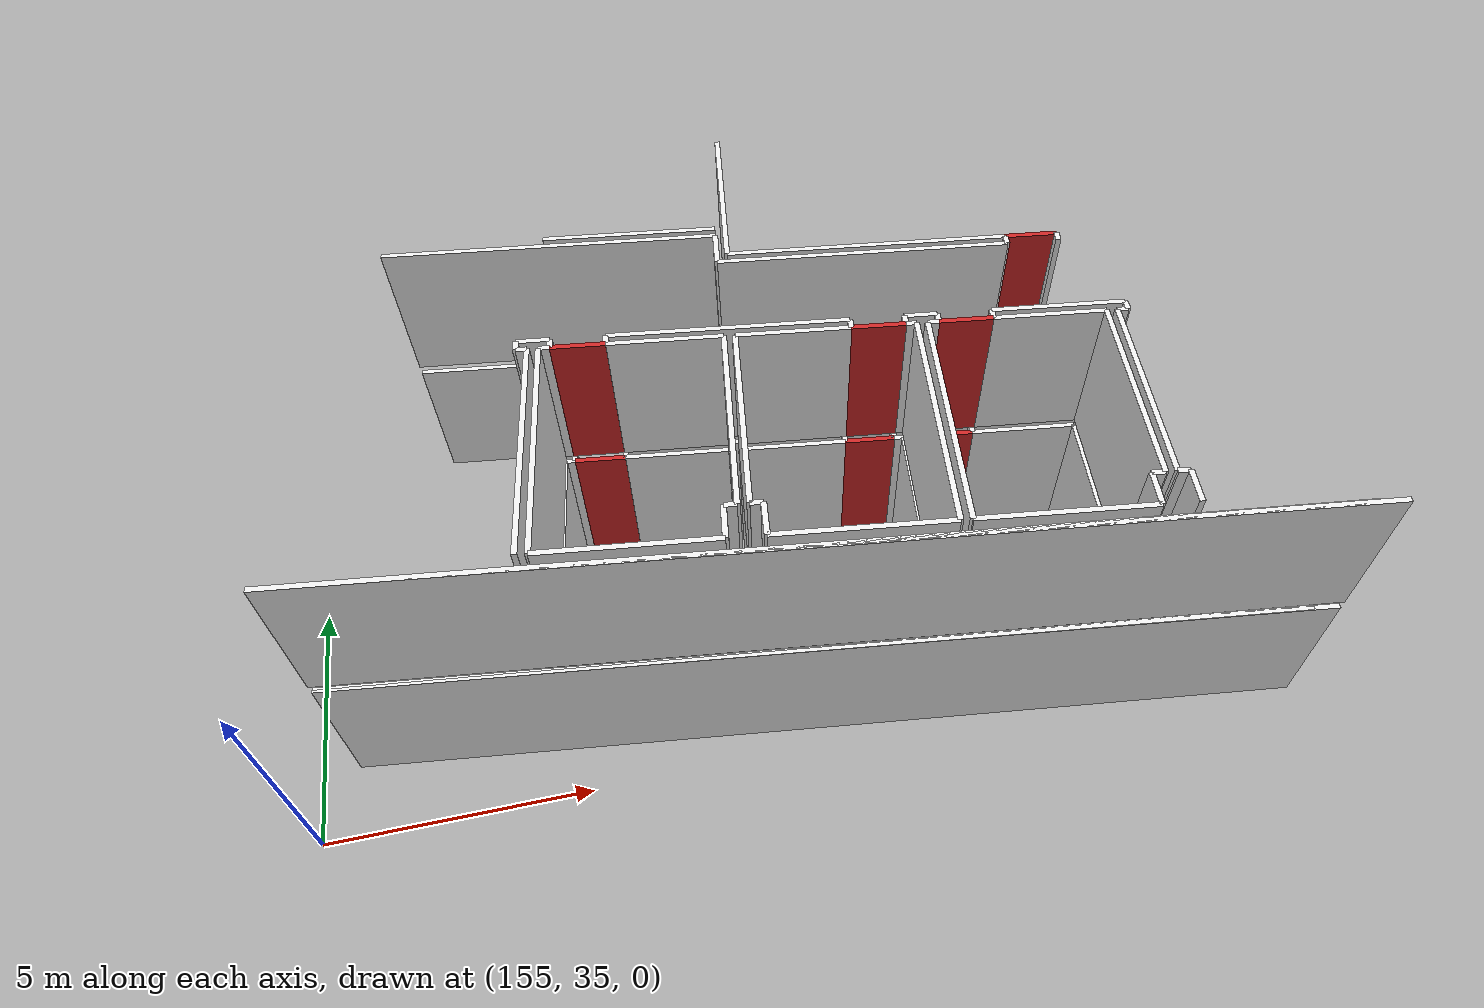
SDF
<sdf version="1.6">
 <world name="default">
  <model name="wall_166.5_39.9_0.0">
   <static>true</static>
   <pose>166.50500000000466 39.91000000014901 1.5 0 0 -0.1206236686924795</pose>
   <link name="link">
    <visual name="visual">
     <geometry><box><size>0.9972462083198822 0.1 3</size></box></geometry>
     <material>
      <script><uri>file://media/materials/scripts/gazebo.material</uri><name>Gazebo/Red</name></script>
     </material>
    </visual>
   </link>
  </model>
  <model name="wall_161.1_40.6_0.0">
   <static>true</static>
   <pose>161.1350000000093 40.56000000005588 1.5 0 0 -0.1206236686924795</pose>
   <link name="link">
    <visual name="visual">
     <geometry><box><size>0.9972462083198822 0.1 3</size></box></geometry>
     <material>
      <script><uri>file://media/materials/scripts/gazebo.material</uri><name>Gazebo/Red</name></script>
     </material>
    </visual>
   </link>
  </model>
  <model name="wall_168.1_39.7_0.0">
   <static>true</static>
   <pose>168.09500000000116 39.71999999997206 1.5 0 0 -0.12062366822190172</pose>
   <link name="link">
    <visual name="visual">
     <geometry><box><size>0.9972462083216332 0.1 3</size></box></geometry>
     <material>
      <script><uri>file://media/materials/scripts/gazebo.material</uri><name>Gazebo/Red</name></script>
     </material>
    </visual>
   </link>
  </model>
  <model name="wall_170.0_41.7_0.0">
   <static>true</static>
   <pose>170.0100000000093 41.68999999994412 1.5 0 0 -0.11942892612851068</pose>
   <link name="link">
    <visual name="visual">
     <geometry><box><size>1.0071742649744493 0.1 3</size></box></geometry>
     <material>
      <script><uri>file://media/materials/scripts/gazebo.material</uri><name>Gazebo/Red</name></script>
     </material>
    </visual>
   </link>
  </model>
  <model name="wall_166.9_37.6_0.0">
   <static>true</static>
   <pose>166.92499999998836 37.63000000012107 1.5 0 0 -1.690673321615393</pose>
   <link name="link">
    <visual name="visual">
     <geometry><box><size>4.4318055010582365 0.1 3</size></box></geometry>
     <material>
      <script><uri>file://media/materials/scripts/gazebo.material</uri><name>Gazebo/White</name></script>
     </material>
    </visual>
   </link>
  </model>
  <model name="wall_165.1_35.6_0.0">
   <static>true</static>
   <pose>165.1349999999802 35.61499999999069 1.5 0 0 3.0208710707011033</pose>
   <link name="link">
    <visual name="visual">
     <geometry><box><size>3.0723606558584717 0.1 3</size></box></geometry>
     <material>
      <script><uri>file://media/materials/scripts/gazebo.material</uri><name>Gazebo/White</name></script>
     </material>
    </visual>
   </link>
  </model>
  <model name="wall_163.6_36.1_0.0">
   <static>true</static>
   <pose>163.64499999998952 36.11999999987893 1.5 0 0 1.4618543698162652</pose>
   <link name="link">
    <visual name="visual">
     <geometry><box><size>0.6438167442431666 0.1 3</size></box></geometry>
     <material>
      <script><uri>file://media/materials/scripts/gazebo.material</uri><name>Gazebo/White</name></script>
     </material>
    </visual>
   </link>
  </model>
  <model name="wall_163.6_36.5_0.0">
   <static>true</static>
   <pose>163.57000000000698 36.455000000074506 1.5 0 0 3.00606493842361</pose>
   <link name="link">
    <visual name="visual">
     <geometry><box><size>0.2220360331192952 0.1 3</size></box></geometry>
     <material>
      <script><uri>file://media/materials/scripts/gazebo.material</uri><name>Gazebo/White</name></script>
     </material>
    </visual>
   </link>
  </model>
  <model name="wall_163.7_38.3_0.0">
   <static>true</static>
   <pose>163.69000000000233 38.34500000020489 1.5 0 0 1.44873942407576</pose>
   <link name="link">
    <visual name="visual">
     <geometry><box><size>3.7781079920994487 0.1 3</size></box></geometry>
     <material>
      <script><uri>file://media/materials/scripts/gazebo.material</uri><name>Gazebo/White</name></script>
     </material>
    </visual>
   </link>
  </model>
  <model name="wall_165.0_40.1_0.0">
   <static>true</static>
   <pose>164.9649999999965 40.09500000020489 1.5 0 0 -0.11905156754423915</pose>
   <link name="link">
    <visual name="visual">
     <geometry><box><size>2.1048990474859015 0.1 3</size></box></geometry>
     <material>
      <script><uri>file://media/materials/scripts/gazebo.material</uri><name>Gazebo/White</name></script>
     </material>
    </visual>
   </link>
  </model>
  <model name="wall_167.1_39.8_0.0">
   <static>true</static>
   <pose>167.09500000000116 39.84000000008382 1.5 0 0 -0.10487693882591773</pose>
   <link name="link">
    <visual name="visual">
     <geometry><box><size>0.19104973174969345 0.1 3</size></box></geometry>
     <material>
      <script><uri>file://media/materials/scripts/gazebo.material</uri><name>Gazebo/White</name></script>
     </material>
    </visual>
   </link>
  </model>
  <model name="wall_162.7_40.4_0.0">
   <static>true</static>
   <pose>162.67499999998836 40.375 1.5 0 0 3.0225410860422697</pose>
   <link name="link">
    <visual name="visual">
     <geometry><box><size>2.104899047428106 0.1 3</size></box></geometry>
     <material>
      <script><uri>file://media/materials/scripts/gazebo.material</uri><name>Gazebo/White</name></script>
     </material>
    </visual>
   </link>
  </model>
  <model name="wall_160.5_40.6_0.0">
   <static>true</static>
   <pose>160.54000000000815 40.63000000012107 1.5 0 0 3.0419240010121844</pose>
   <link name="link">
    <visual name="visual">
     <geometry><box><size>0.20099751243585498 0.1 3</size></box></geometry>
     <material>
      <script><uri>file://media/materials/scripts/gazebo.material</uri><name>Gazebo/White</name></script>
     </material>
    </visual>
   </link>
  </model>
  <model name="wall_160.2_38.4_0.0">
   <static>true</static>
   <pose>160.17499999998836 38.44000000017695 1.5 0 0 -1.690673321615393</pose>
   <link name="link">
    <visual name="visual">
     <geometry><box><size>4.4318055010582365 0.1 3</size></box></geometry>
     <material>
      <script><uri>file://media/materials/scripts/gazebo.material</uri><name>Gazebo/White</name></script>
     </material>
    </visual>
   </link>
  </model>
  <model name="wall_161.4_36.1_0.0">
   <static>true</static>
   <pose>161.43499999999767 36.06000000005588 1.5 0 0 -0.11748918977593945</pose>
   <link name="link">
    <visual name="visual">
     <geometry><box><size>3.071172414652986 0.1 3</size></box></geometry>
     <material>
      <script><uri>file://media/materials/scripts/gazebo.material</uri><name>Gazebo/White</name></script>
     </material>
    </visual>
   </link>
  </model>
  <model name="wall_163.0_36.2_0.0">
   <static>true</static>
   <pose>163.0 36.199999999953434 1.5 0 0 1.4464413323376855</pose>
   <link name="link">
    <visual name="visual">
     <geometry><box><size>0.6449806199880641 0.1 3</size></box></geometry>
     <material>
      <script><uri>file://media/materials/scripts/gazebo.material</uri><name>Gazebo/White</name></script>
     </material>
    </visual>
   </link>
  </model>
  <model name="wall_163.1_36.5_0.0">
   <static>true</static>
   <pose>163.14999999999418 36.50500000012107 1.5 0 0 -0.13552771305276134</pose>
   <link name="link">
    <visual name="visual">
     <geometry><box><size>0.22203603311405212 0.1 3</size></box></geometry>
     <material>
      <script><uri>file://media/materials/scripts/gazebo.material</uri><name>Gazebo/White</name></script>
     </material>
    </visual>
   </link>
  </model>
  <model name="wall_163.5_38.4_0.0">
   <static>true</static>
   <pose>163.4899999999907 38.37000000011176 1.5 0 0 1.4490608416488255</pose>
   <link name="link">
    <visual name="visual">
     <geometry><box><size>3.7880337905415886 0.1 3</size></box></geometry>
     <material>
      <script><uri>file://media/materials/scripts/gazebo.material</uri><name>Gazebo/White</name></script>
     </material>
    </visual>
   </link>
  </model>
  <model name="wall_170.4_37.5_0.0">
   <static>true</static>
   <pose>170.44499999997788 37.53000000002794 1.5 0 0 -1.6899106225096845</pose>
   <link name="link">
    <visual name="visual">
     <geometry><box><size>3.7868324496644155 0.1 3</size></box></geometry>
     <material>
      <script><uri>file://media/materials/scripts/gazebo.material</uri><name>Gazebo/White</name></script>
     </material>
    </visual>
   </link>
  </model>
  <model name="wall_170.1_35.7_0.0">
   <static>true</static>
   <pose>170.10499999998137 35.66500000003725 1.5 0 0 3.0118901153086775</pose>
   <link name="link">
    <visual name="visual">
     <geometry><box><size>0.23194827011012187 0.1 3</size></box></geometry>
     <material>
      <script><uri>file://media/materials/scripts/gazebo.material</uri><name>Gazebo/White</name></script>
     </material>
    </visual>
   </link>
  </model>
  <model name="wall_169.9_35.4_0.0">
   <static>true</static>
   <pose>169.94999999998254 35.360000000102445 1.5 0 0 -1.695151321341658</pose>
   <link name="link">
    <visual name="visual">
     <geometry><box><size>0.6449806199952839 0.1 3</size></box></geometry>
     <material>
      <script><uri>file://media/materials/scripts/gazebo.material</uri><name>Gazebo/White</name></script>
     </material>
    </visual>
   </link>
  </model>
  <model name="wall_168.4_35.2_0.0">
   <static>true</static>
   <pose>168.3849999999802 35.22500000009313 1.5 0 0 3.020871070550642</pose>
   <link name="link">
    <visual name="visual">
     <geometry><box><size>3.0723606559145504 0.1 3</size></box></geometry>
     <material>
      <script><uri>file://media/materials/scripts/gazebo.material</uri><name>Gazebo/White</name></script>
     </material>
    </visual>
   </link>
  </model>
  <model name="wall_167.1_37.6_0.0">
   <static>true</static>
   <pose>167.125 37.60499999998137 1.5 0 0 1.4506488810357367</pose>
   <link name="link">
    <visual name="visual">
     <geometry><box><size>4.421877428998444 0.1 3</size></box></geometry>
     <material>
      <script><uri>file://media/materials/scripts/gazebo.material</uri><name>Gazebo/White</name></script>
     </material>
    </visual>
   </link>
  </model>
  <model name="wall_167.5_39.8_0.0">
   <static>true</static>
   <pose>167.49499999999534 39.78999999980442 1.5 0 0 -0.09495170644739931</pose>
   <link name="link">
    <visual name="visual">
     <geometry><box><size>0.21095023106197072 0.1 3</size></box></geometry>
     <material>
      <script><uri>file://media/materials/scripts/gazebo.material</uri><name>Gazebo/White</name></script>
     </material>
    </visual>
   </link>
  </model>
  <model name="wall_169.6_39.5_0.0">
   <static>true</static>
   <pose>169.63000000000466 39.53500000014901 1.5 0 0 -0.11961849947817037</pose>
   <link name="link">
    <visual name="visual">
     <geometry><box><size>2.094970166810415 0.1 3</size></box></geometry>
     <material>
      <script><uri>file://media/materials/scripts/gazebo.material</uri><name>Gazebo/White</name></script>
     </material>
    </visual>
   </link>
  </model>
  <model name="wall_171.3_41.5_0.0">
   <static>true</static>
   <pose>171.31500000000233 41.53499999991618 1.5 0 0 3.024123548711388</pose>
   <link name="link">
    <visual name="visual">
     <geometry><box><size>1.6211724152395952 0.1 3</size></box></geometry>
     <material>
      <script><uri>file://media/materials/scripts/gazebo.material</uri><name>Gazebo/White</name></script>
     </material>
    </visual>
   </link>
  </model>
  <model name="wall_166.8_42.1_0.0">
   <static>true</static>
   <pose>166.8399999999965 42.07000000006519 1.5 0 0 3.0223114162191558</pose>
   <link name="link">
    <visual name="visual">
     <geometry><box><size>5.378215317411569 0.1 3</size></box></geometry>
     <material>
      <script><uri>file://media/materials/scripts/gazebo.material</uri><name>Gazebo/White</name></script>
     </material>
    </visual>
   </link>
  </model>
  <model name="wall_164.4_44.1_0.0">
   <static>true</static>
   <pose>164.38000000000466 44.12000000011176 1.5 0 0 1.4500000360731269</pose>
   <link name="link">
    <visual name="visual">
     <geometry><box><size>3.4853981120924216 0.1 3</size></box></geometry>
     <material>
      <script><uri>file://media/materials/scripts/gazebo.material</uri><name>Gazebo/White</name></script>
     </material>
    </visual>
   </link>
  </model>
  <model name="wall_162.4_43.4_0.0">
   <static>true</static>
   <pose>162.42500000001746 43.360000000102445 1.5 0 0 3.0206059098054316</pose>
   <link name="link">
    <visual name="visual">
     <geometry><box><size>3.3142269083132514 0.1 3</size></box></geometry>
     <material>
      <script><uri>file://media/materials/scripts/gazebo.material</uri><name>Gazebo/White</name></script>
     </material>
    </visual>
   </link>
  </model>
  <model name="wall_160.1_40.7_0.0">
   <static>true</static>
   <pose>160.13999999998487 40.67999999993481 1.5 0 0 -0.09966865257760905</pose>
   <link name="link">
    <visual name="visual">
     <geometry><box><size>0.20099751243585498 0.1 3</size></box></geometry>
     <material>
      <script><uri>file://media/materials/scripts/gazebo.material</uri><name>Gazebo/White</name></script>
     </material>
    </visual>
   </link>
  </model>
  <model name="wall_160.0_38.5_0.0">
   <static>true</static>
   <pose>159.97000000000116 38.46999999997206 1.5 0 0 -1.6929129367175275</pose>
   <link name="link">
    <visual name="visual">
     <geometry><box><size>4.433012519625655 0.1 3</size></box></geometry>
     <material>
      <script><uri>file://media/materials/scripts/gazebo.material</uri><name>Gazebo/White</name></script>
     </material>
    </visual>
   </link>
  </model>
  <model name="wall_171.0_39.4_0.0">
   <static>true</static>
   <pose>170.97000000000116 39.36999999987893 1.5 0 0 -0.09966865257760905</pose>
   <link name="link">
    <visual name="visual">
     <geometry><box><size>0.20099751243585498 0.1 3</size></box></geometry>
     <material>
      <script><uri>file://media/materials/scripts/gazebo.material</uri><name>Gazebo/White</name></script>
     </material>
    </visual>
   </link>
  </model>
  <model name="wall_170.6_35.3_0.0">
   <static>true</static>
   <pose>170.60000000000582 35.28000000002794 1.5 0 0 1.446441332248135</pose>
   <link name="link">
    <visual name="visual">
     <geometry><box><size>0.6449806199952839 0.1 3</size></box></geometry>
     <material>
      <script><uri>file://media/materials/scripts/gazebo.material</uri><name>Gazebo/White</name></script>
     </material>
    </visual>
   </link>
  </model>
  <model name="wall_170.5_35.6_0.0">
   <static>true</static>
   <pose>170.52999999999884 35.61499999999069 1.5 0 0 3.006064940537032</pose>
   <link name="link">
    <visual name="visual">
     <geometry><box><size>0.22203603311405212 0.1 3</size></box></geometry>
     <material>
      <script><uri>file://media/materials/scripts/gazebo.material</uri><name>Gazebo/White</name></script>
     </material>
    </visual>
   </link>
  </model>
  <model name="wall_170.6_37.5_0.0">
   <static>true</static>
   <pose>170.64499999998952 37.50499999988824 1.5 0 0 1.4513674007734978</pose>
   <link name="link">
    <visual name="visual">
     <geometry><box><size>3.7769034936056385 0.1 3</size></box></geometry>
     <material>
      <script><uri>file://media/materials/scripts/gazebo.material</uri><name>Gazebo/White</name></script>
     </material>
    </visual>
   </link>
  </model>
  <model name="wall_166.7_41.9_0.0">
   <static>true</static>
   <pose>166.72000000000116 41.87999999988824 1.5 0 0 -0.11857471213006499</pose>
   <link name="link">
    <visual name="visual">
     <geometry><box><size>5.579175566332764 0.1 3</size></box></geometry>
     <material>
      <script><uri>file://media/materials/scripts/gazebo.material</uri><name>Gazebo/White</name></script>
     </material>
    </visual>
   </link>
  </model>
  <model name="wall_169.5_41.6_0.0">
   <static>true</static>
   <pose>169.5 41.64999999990687 1.5 0 0 1.4711276743037347</pose>
   <link name="link">
    <visual name="visual">
     <geometry><box><size>0.20099751260961132 0.1 3</size></box></geometry>
     <material>
      <script><uri>file://media/materials/scripts/gazebo.material</uri><name>Gazebo/White</name></script>
     </material>
    </visual>
   </link>
  </model>
  <model name="wall_170.5_41.5_0.0">
   <static>true</static>
   <pose>170.49499999999534 41.53000000002794 1.5 0 0 -1.7196862747459547</pose>
   <link name="link">
    <visual name="visual">
     <geometry><box><size>0.2022374838894058 0.1 3</size></box></geometry>
     <material>
      <script><uri>file://media/materials/scripts/gazebo.material</uri><name>Gazebo/White</name></script>
     </material>
    </visual>
   </link>
  </model>
  <model name="wall_171.1_39.5_0.0">
   <static>true</static>
   <pose>171.0800000000163 39.45999999996275 1.5 0 0 1.4711276743037347</pose>
   <link name="link">
    <visual name="visual">
     <geometry><box><size>0.20099751260961132 0.1 3</size></box></geometry>
     <material>
      <script><uri>file://media/materials/scripts/gazebo.material</uri><name>Gazebo/White</name></script>
     </material>
    </visual>
   </link>
  </model>
  <model name="wall_169.9_39.7_0.0">
   <static>true</static>
   <pose>169.85500000001048 39.70999999996275 1.5 0 0 3.0207271763608894</pose>
   <link name="link">
    <visual name="visual">
     <geometry><box><size>2.4881519246295563 0.1 3</size></box></geometry>
     <material>
      <script><uri>file://media/materials/scripts/gazebo.material</uri><name>Gazebo/White</name></script>
     </material>
    </visual>
   </link>
  </model>
  <model name="wall_168.6_39.8_0.0">
   <static>true</static>
   <pose>168.60500000001048 39.76000000000931 1.5 0 0 -1.7196862744613206</pose>
   <link name="link">
    <visual name="visual">
     <geometry><box><size>0.20223748388077126 0.1 3</size></box></geometry>
     <material>
      <script><uri>file://media/materials/scripts/gazebo.material</uri><name>Gazebo/White</name></script>
     </material>
    </visual>
   </link>
  </model>
  <model name="wall_167.6_39.9_0.0">
   <static>true</static>
   <pose>167.60999999998603 39.87999999988824 1.5 0 0 1.4711276743037347</pose>
   <link name="link">
    <visual name="visual">
     <geometry><box><size>0.20099751260961132 0.1 3</size></box></geometry>
     <material>
      <script><uri>file://media/materials/scripts/gazebo.material</uri><name>Gazebo/White</name></script>
     </material>
    </visual>
   </link>
  </model>
  <model name="wall_167.3_40.0_0.0">
   <static>true</static>
   <pose>167.32000000000698 40.014999999897555 1.5 0 0 3.0254510269809813</pose>
   <link name="link">
    <visual name="visual">
     <geometry><box><size>0.6040695323790061 0.1 3</size></box></geometry>
     <material>
      <script><uri>file://media/materials/scripts/gazebo.material</uri><name>Gazebo/White</name></script>
     </material>
    </visual>
   </link>
  </model>
  <model name="wall_167.0_39.9_0.0">
   <static>true</static>
   <pose>167.0100000000093 39.949999999953434 1.5 0 0 -1.670464979516584</pose>
   <link name="link">
    <visual name="visual">
     <geometry><box><size>0.20099751214626105 0.1 3</size></box></geometry>
     <material>
      <script><uri>file://media/materials/scripts/gazebo.material</uri><name>Gazebo/White</name></script>
     </material>
    </visual>
   </link>
  </model>
  <model name="wall_166.0_40.1_0.0">
   <static>true</static>
   <pose>166.02000000001863 40.07000000006519 1.5 0 0 1.471127674073209</pose>
   <link name="link">
    <visual name="visual">
     <geometry><box><size>0.20099751214626105 0.1 3</size></box></geometry>
     <material>
      <script><uri>file://media/materials/scripts/gazebo.material</uri><name>Gazebo/White</name></script>
     </material>
    </visual>
   </link>
  </model>
  <model name="wall_163.8_40.4_0.0">
   <static>true</static>
   <pose>163.8400000000256 40.43500000005588 1.5 0 0 3.0211735397007757</pose>
   <link name="link">
    <visual name="visual">
     <geometry><box><size>4.41194968243261 0.1 3</size></box></geometry>
     <material>
      <script><uri>file://media/materials/scripts/gazebo.material</uri><name>Gazebo/White</name></script>
     </material>
    </visual>
   </link>
  </model>
  <model name="wall_161.6_40.6_0.0">
   <static>true</static>
   <pose>161.64000000001397 40.60000000009313 1.5 0 0 -1.6704649792860586</pose>
   <link name="link">
    <visual name="visual">
     <geometry><box><size>0.20099751260961132 0.1 3</size></box></geometry>
     <material>
      <script><uri>file://media/materials/scripts/gazebo.material</uri><name>Gazebo/White</name></script>
     </material>
    </visual>
   </link>
  </model>
  <model name="wall_160.6_40.7_0.0">
   <static>true</static>
   <pose>160.64999999999418 40.71999999997206 1.5 0 0 1.471127674361366</pose>
   <link name="link">
    <visual name="visual">
     <geometry><box><size>0.20099751214046915 0.1 3</size></box></geometry>
     <material>
      <script><uri>file://media/materials/scripts/gazebo.material</uri><name>Gazebo/White</name></script>
     </material>
    </visual>
   </link>
  </model>
  <model name="wall_160.4_40.9_0.0">
   <static>true</static>
   <pose>160.35999999998603 40.85499999998137 1.5 0 0 3.025451026215301</pose>
   <link name="link">
    <visual name="visual">
     <geometry><box><size>0.6040695324329671 0.1 3</size></box></geometry>
     <material>
      <script><uri>file://media/materials/scripts/gazebo.material</uri><name>Gazebo/White</name></script>
     </material>
    </visual>
   </link>
  </model>
  <model name="wall_160.0_40.8_0.0">
   <static>true</static>
   <pose>160.04999999998836 40.79000000003725 1.5 0 0 -1.6704649792860586</pose>
   <link name="link">
    <visual name="visual">
     <geometry><box><size>0.20099751260961132 0.1 3</size></box></geometry>
     <material>
      <script><uri>file://media/materials/scripts/gazebo.material</uri><name>Gazebo/White</name></script>
     </material>
    </visual>
   </link>
  </model>
  <model name="wall_160.9_43.3_0.0">
   <static>true</static>
   <pose>160.8849999999802 43.34000000008382 1.5 0 0 -0.11986634401243841</pose>
   <link name="link">
    <visual name="visual">
     <geometry><box><size>6.3556038265721595 0.1 3</size></box></geometry>
     <material>
      <script><uri>file://media/materials/scripts/gazebo.material</uri><name>Gazebo/White</name></script>
     </material>
    </visual>
   </link>
  </model>
  <model name="wall_164.0_42.6_0.0">
   <static>true</static>
   <pose>163.99499999999534 42.58499999996275 1.5 0 0 -1.6902252527703903</pose>
   <link name="link">
    <visual name="visual">
     <geometry><box><size>0.7553806987169667 0.1 3</size></box></geometry>
     <material>
      <script><uri>file://media/materials/scripts/gazebo.material</uri><name>Gazebo/White</name></script>
     </material>
    </visual>
   </link>
  </model>
  <model name="wall_164.5_35.4_0.0">
   <static>true</static>
   <pose>164.52499999999418 35.41500000003725 1.5 0 0 -0.11969610327774036</pose>
   <link name="link">
    <visual name="visual">
     <geometry><box><size>17.837628766185997 0.1 3</size></box></geometry>
     <material>
      <script><uri>file://media/materials/scripts/gazebo.material</uri><name>Gazebo/White</name></script>
     </material>
    </visual>
   </link>
  </model>
  <model name="wall_164.8_35.4_0.0">
   <static>true</static>
   <pose>164.7599999999802 35.37999999988824 1.5 0 0 3.0211661134919177</pose>
   <link name="link">
    <visual name="visual">
     <geometry><box><size>18.312629521741698 0.1 3</size></box></geometry>
     <material>
      <script><uri>file://media/materials/scripts/gazebo.material</uri><name>Gazebo/White</name></script>
     </material>
    </visual>
   </link>
  </model>
  <model name="wall_166.5_39.9_3.2">
   <static>true</static>
   <pose>166.50500000000466 39.91000000014901 4.7 0 0 -0.1206236686924795</pose>
   <link name="link">
    <visual name="visual">
     <geometry><box><size>0.9972462083198822 0.1 3</size></box></geometry>
     <material>
      <script><uri>file://media/materials/scripts/gazebo.material</uri><name>Gazebo/Red</name></script>
     </material>
    </visual>
   </link>
  </model>
  <model name="wall_161.1_40.6_3.2">
   <static>true</static>
   <pose>161.1350000000093 40.56000000005588 4.7 0 0 -0.1206236686924795</pose>
   <link name="link">
    <visual name="visual">
     <geometry><box><size>0.9972462083198822 0.1 3</size></box></geometry>
     <material>
      <script><uri>file://media/materials/scripts/gazebo.material</uri><name>Gazebo/Red</name></script>
     </material>
    </visual>
   </link>
  </model>
  <model name="wall_168.1_39.7_3.2">
   <static>true</static>
   <pose>168.09500000000116 39.71999999997206 4.7 0 0 -0.12062366822190172</pose>
   <link name="link">
    <visual name="visual">
     <geometry><box><size>0.9972462083216332 0.1 3</size></box></geometry>
     <material>
      <script><uri>file://media/materials/scripts/gazebo.material</uri><name>Gazebo/Red</name></script>
     </material>
    </visual>
   </link>
  </model>
  <model name="wall_170.0_41.7_3.2">
   <static>true</static>
   <pose>170.0100000000093 41.68999999994412 4.7 0 0 -0.11942892612851068</pose>
   <link name="link">
    <visual name="visual">
     <geometry><box><size>1.0071742649744493 0.1 3</size></box></geometry>
     <material>
      <script><uri>file://media/materials/scripts/gazebo.material</uri><name>Gazebo/Red</name></script>
     </material>
    </visual>
   </link>
  </model>
  <model name="wall_166.9_37.6_3.2">
   <static>true</static>
   <pose>166.92499999998836 37.63000000012107 4.7 0 0 -1.690673321615393</pose>
   <link name="link">
    <visual name="visual">
     <geometry><box><size>4.4318055010582365 0.1 3</size></box></geometry>
     <material>
      <script><uri>file://media/materials/scripts/gazebo.material</uri><name>Gazebo/White</name></script>
     </material>
    </visual>
   </link>
  </model>
  <model name="wall_165.1_35.6_3.2">
   <static>true</static>
   <pose>165.1349999999802 35.61499999999069 4.7 0 0 3.0208710707011033</pose>
   <link name="link">
    <visual name="visual">
     <geometry><box><size>3.0723606558584717 0.1 3</size></box></geometry>
     <material>
      <script><uri>file://media/materials/scripts/gazebo.material</uri><name>Gazebo/White</name></script>
     </material>
    </visual>
   </link>
  </model>
  <model name="wall_163.6_36.1_3.2">
   <static>true</static>
   <pose>163.64499999998952 36.11999999987893 4.7 0 0 1.4618543698162652</pose>
   <link name="link">
    <visual name="visual">
     <geometry><box><size>0.6438167442431666 0.1 3</size></box></geometry>
     <material>
      <script><uri>file://media/materials/scripts/gazebo.material</uri><name>Gazebo/White</name></script>
     </material>
    </visual>
   </link>
  </model>
  <model name="wall_163.6_36.5_3.2">
   <static>true</static>
   <pose>163.57000000000698 36.455000000074506 4.7 0 0 3.00606493842361</pose>
   <link name="link">
    <visual name="visual">
     <geometry><box><size>0.2220360331192952 0.1 3</size></box></geometry>
     <material>
      <script><uri>file://media/materials/scripts/gazebo.material</uri><name>Gazebo/White</name></script>
     </material>
    </visual>
   </link>
  </model>
  <model name="wall_163.7_38.3_3.2">
   <static>true</static>
   <pose>163.69000000000233 38.34500000020489 4.7 0 0 1.44873942407576</pose>
   <link name="link">
    <visual name="visual">
     <geometry><box><size>3.7781079920994487 0.1 3</size></box></geometry>
     <material>
      <script><uri>file://media/materials/scripts/gazebo.material</uri><name>Gazebo/White</name></script>
     </material>
    </visual>
   </link>
  </model>
  <model name="wall_165.0_40.1_3.2">
   <static>true</static>
   <pose>164.9649999999965 40.09500000020489 4.7 0 0 -0.11905156754423915</pose>
   <link name="link">
    <visual name="visual">
     <geometry><box><size>2.1048990474859015 0.1 3</size></box></geometry>
     <material>
      <script><uri>file://media/materials/scripts/gazebo.material</uri><name>Gazebo/White</name></script>
     </material>
    </visual>
   </link>
  </model>
  <model name="wall_167.1_39.8_3.2">
   <static>true</static>
   <pose>167.09500000000116 39.84000000008382 4.7 0 0 -0.10487693882591773</pose>
   <link name="link">
    <visual name="visual">
     <geometry><box><size>0.19104973174969345 0.1 3</size></box></geometry>
     <material>
      <script><uri>file://media/materials/scripts/gazebo.material</uri><name>Gazebo/White</name></script>
     </material>
    </visual>
   </link>
  </model>
  <model name="wall_162.7_40.4_3.2">
   <static>true</static>
   <pose>162.67499999998836 40.375 4.7 0 0 3.0225410860422697</pose>
   <link name="link">
    <visual name="visual">
     <geometry><box><size>2.104899047428106 0.1 3</size></box></geometry>
     <material>
      <script><uri>file://media/materials/scripts/gazebo.material</uri><name>Gazebo/White</name></script>
     </material>
    </visual>
   </link>
  </model>
  <model name="wall_160.5_40.6_3.2">
   <static>true</static>
   <pose>160.54000000000815 40.63000000012107 4.7 0 0 3.0419240010121844</pose>
   <link name="link">
    <visual name="visual">
     <geometry><box><size>0.20099751243585498 0.1 3</size></box></geometry>
     <material>
      <script><uri>file://media/materials/scripts/gazebo.material</uri><name>Gazebo/White</name></script>
     </material>
    </visual>
   </link>
  </model>
  <model name="wall_160.2_38.4_3.2">
   <static>true</static>
   <pose>160.17499999998836 38.44000000017695 4.7 0 0 -1.690673321615393</pose>
   <link name="link">
    <visual name="visual">
     <geometry><box><size>4.4318055010582365 0.1 3</size></box></geometry>
     <material>
      <script><uri>file://media/materials/scripts/gazebo.material</uri><name>Gazebo/White</name></script>
     </material>
    </visual>
   </link>
  </model>
  <model name="wall_161.4_36.1_3.2">
   <static>true</static>
   <pose>161.43499999999767 36.06000000005588 4.7 0 0 -0.11748918977593945</pose>
   <link name="link">
    <visual name="visual">
     <geometry><box><size>3.071172414652986 0.1 3</size></box></geometry>
     <material>
      <script><uri>file://media/materials/scripts/gazebo.material</uri><name>Gazebo/White</name></script>
     </material>
    </visual>
   </link>
  </model>
  <model name="wall_163.0_36.2_3.2">
   <static>true</static>
   <pose>163.0 36.199999999953434 4.7 0 0 1.4464413323376855</pose>
   <link name="link">
    <visual name="visual">
     <geometry><box><size>0.6449806199880641 0.1 3</size></box></geometry>
     <material>
      <script><uri>file://media/materials/scripts/gazebo.material</uri><name>Gazebo/White</name></script>
     </material>
    </visual>
   </link>
  </model>
  <model name="wall_163.1_36.5_3.2">
   <static>true</static>
   <pose>163.14999999999418 36.50500000012107 4.7 0 0 -0.13552771305276134</pose>
   <link name="link">
    <visual name="visual">
     <geometry><box><size>0.22203603311405212 0.1 3</size></box></geometry>
     <material>
      <script><uri>file://media/materials/scripts/gazebo.material</uri><name>Gazebo/White</name></script>
     </material>
    </visual>
   </link>
  </model>
  <model name="wall_163.5_38.4_3.2">
   <static>true</static>
   <pose>163.4899999999907 38.37000000011176 4.7 0 0 1.4490608416488255</pose>
   <link name="link">
    <visual name="visual">
     <geometry><box><size>3.7880337905415886 0.1 3</size></box></geometry>
     <material>
      <script><uri>file://media/materials/scripts/gazebo.material</uri><name>Gazebo/White</name></script>
     </material>
    </visual>
   </link>
  </model>
  <model name="wall_170.4_37.5_3.2">
   <static>true</static>
   <pose>170.44499999997788 37.53000000002794 4.7 0 0 -1.6899106225096845</pose>
   <link name="link">
    <visual name="visual">
     <geometry><box><size>3.7868324496644155 0.1 3</size></box></geometry>
     <material>
      <script><uri>file://media/materials/scripts/gazebo.material</uri><name>Gazebo/White</name></script>
     </material>
    </visual>
   </link>
  </model>
  <model name="wall_170.1_35.7_3.2">
   <static>true</static>
   <pose>170.10499999998137 35.66500000003725 4.7 0 0 3.0118901153086775</pose>
   <link name="link">
    <visual name="visual">
     <geometry><box><size>0.23194827011012187 0.1 3</size></box></geometry>
     <material>
      <script><uri>file://media/materials/scripts/gazebo.material</uri><name>Gazebo/White</name></script>
     </material>
    </visual>
   </link>
  </model>
  <model name="wall_169.9_35.4_3.2">
   <static>true</static>
   <pose>169.94999999998254 35.360000000102445 4.7 0 0 -1.695151321341658</pose>
   <link name="link">
    <visual name="visual">
     <geometry><box><size>0.6449806199952839 0.1 3</size></box></geometry>
     <material>
      <script><uri>file://media/materials/scripts/gazebo.material</uri><name>Gazebo/White</name></script>
     </material>
    </visual>
   </link>
  </model>
  <model name="wall_168.4_35.2_3.2">
   <static>true</static>
   <pose>168.3849999999802 35.22500000009313 4.7 0 0 3.020871070550642</pose>
   <link name="link">
    <visual name="visual">
     <geometry><box><size>3.0723606559145504 0.1 3</size></box></geometry>
     <material>
      <script><uri>file://media/materials/scripts/gazebo.material</uri><name>Gazebo/White</name></script>
     </material>
    </visual>
   </link>
  </model>
  <model name="wall_167.1_37.6_3.2">
   <static>true</static>
   <pose>167.125 37.60499999998137 4.7 0 0 1.4506488810357367</pose>
   <link name="link">
    <visual name="visual">
     <geometry><box><size>4.421877428998444 0.1 3</size></box></geometry>
     <material>
      <script><uri>file://media/materials/scripts/gazebo.material</uri><name>Gazebo/White</name></script>
     </material>
    </visual>
   </link>
  </model>
  <model name="wall_167.5_39.8_3.2">
   <static>true</static>
   <pose>167.49499999999534 39.78999999980442 4.7 0 0 -0.09495170644739931</pose>
   <link name="link">
    <visual name="visual">
     <geometry><box><size>0.21095023106197072 0.1 3</size></box></geometry>
     <material>
      <script><uri>file://media/materials/scripts/gazebo.material</uri><name>Gazebo/White</name></script>
     </material>
    </visual>
   </link>
  </model>
  <model name="wall_169.6_39.5_3.2">
   <static>true</static>
   <pose>169.63000000000466 39.53500000014901 4.7 0 0 -0.11961849947817037</pose>
   <link name="link">
    <visual name="visual">
     <geometry><box><size>2.094970166810415 0.1 3</size></box></geometry>
     <material>
      <script><uri>file://media/materials/scripts/gazebo.material</uri><name>Gazebo/White</name></script>
     </material>
    </visual>
   </link>
  </model>
  <model name="wall_166.8_42.1_3.2">
   <static>true</static>
   <pose>166.8399999999965 42.07000000006519 4.7 0 0 3.0223114162191558</pose>
   <link name="link">
    <visual name="visual">
     <geometry><box><size>5.378215317411569 0.1 3</size></box></geometry>
     <material>
      <script><uri>file://media/materials/scripts/gazebo.material</uri><name>Gazebo/White</name></script>
     </material>
    </visual>
   </link>
  </model>
  <model name="wall_164.4_44.1_3.2">
   <static>true</static>
   <pose>164.38000000000466 44.12000000011176 4.7 0 0 1.4500000360731269</pose>
   <link name="link">
    <visual name="visual">
     <geometry><box><size>3.4853981120924216 0.1 3</size></box></geometry>
     <material>
      <script><uri>file://media/materials/scripts/gazebo.material</uri><name>Gazebo/White</name></script>
     </material>
    </visual>
   </link>
  </model>
  <model name="wall_162.4_43.4_3.2">
   <static>true</static>
   <pose>162.42500000001746 43.360000000102445 4.7 0 0 3.0206059098054316</pose>
   <link name="link">
    <visual name="visual">
     <geometry><box><size>3.3142269083132514 0.1 3</size></box></geometry>
     <material>
      <script><uri>file://media/materials/scripts/gazebo.material</uri><name>Gazebo/White</name></script>
     </material>
    </visual>
   </link>
  </model>
  <model name="wall_160.1_40.7_3.2">
   <static>true</static>
   <pose>160.13999999998487 40.67999999993481 4.7 0 0 -0.09966865257760905</pose>
   <link name="link">
    <visual name="visual">
     <geometry><box><size>0.20099751243585498 0.1 3</size></box></geometry>
     <material>
      <script><uri>file://media/materials/scripts/gazebo.material</uri><name>Gazebo/White</name></script>
     </material>
    </visual>
   </link>
  </model>
  <model name="wall_160.0_38.5_3.2">
   <static>true</static>
   <pose>159.97000000000116 38.46999999997206 4.7 0 0 -1.6929129367175275</pose>
   <link name="link">
    <visual name="visual">
     <geometry><box><size>4.433012519625655 0.1 3</size></box></geometry>
     <material>
      <script><uri>file://media/materials/scripts/gazebo.material</uri><name>Gazebo/White</name></script>
     </material>
    </visual>
   </link>
  </model>
  <model name="wall_171.0_39.4_3.2">
   <static>true</static>
   <pose>170.97000000000116 39.36999999987893 4.7 0 0 -0.09966865257760905</pose>
   <link name="link">
    <visual name="visual">
     <geometry><box><size>0.20099751243585498 0.1 3</size></box></geometry>
     <material>
      <script><uri>file://media/materials/scripts/gazebo.material</uri><name>Gazebo/White</name></script>
     </material>
    </visual>
   </link>
  </model>
  <model name="wall_170.6_35.3_3.2">
   <static>true</static>
   <pose>170.60000000000582 35.28000000002794 4.7 0 0 1.446441332248135</pose>
   <link name="link">
    <visual name="visual">
     <geometry><box><size>0.6449806199952839 0.1 3</size></box></geometry>
     <material>
      <script><uri>file://media/materials/scripts/gazebo.material</uri><name>Gazebo/White</name></script>
     </material>
    </visual>
   </link>
  </model>
  <model name="wall_170.5_35.6_3.2">
   <static>true</static>
   <pose>170.52999999999884 35.61499999999069 4.7 0 0 3.006064940537032</pose>
   <link name="link">
    <visual name="visual">
     <geometry><box><size>0.22203603311405212 0.1 3</size></box></geometry>
     <material>
      <script><uri>file://media/materials/scripts/gazebo.material</uri><name>Gazebo/White</name></script>
     </material>
    </visual>
   </link>
  </model>
  <model name="wall_170.6_37.5_3.2">
   <static>true</static>
   <pose>170.64499999998952 37.50499999988824 4.7 0 0 1.4513674007734978</pose>
   <link name="link">
    <visual name="visual">
     <geometry><box><size>3.7769034936056385 0.1 3</size></box></geometry>
     <material>
      <script><uri>file://media/materials/scripts/gazebo.material</uri><name>Gazebo/White</name></script>
     </material>
    </visual>
   </link>
  </model>
  <model name="wall_166.7_41.9_3.2">
   <static>true</static>
   <pose>166.72000000000116 41.87999999988824 4.7 0 0 -0.11857471213006499</pose>
   <link name="link">
    <visual name="visual">
     <geometry><box><size>5.579175566332764 0.1 3</size></box></geometry>
     <material>
      <script><uri>file://media/materials/scripts/gazebo.material</uri><name>Gazebo/White</name></script>
     </material>
    </visual>
   </link>
  </model>
  <model name="wall_169.5_41.6_3.2">
   <static>true</static>
   <pose>169.5 41.64999999990687 4.7 0 0 1.4711276743037347</pose>
   <link name="link">
    <visual name="visual">
     <geometry><box><size>0.20099751260961132 0.1 3</size></box></geometry>
     <material>
      <script><uri>file://media/materials/scripts/gazebo.material</uri><name>Gazebo/White</name></script>
     </material>
    </visual>
   </link>
  </model>
  <model name="wall_170.5_41.5_3.2">
   <static>true</static>
   <pose>170.49499999999534 41.53000000002794 4.7 0 0 -1.7196862747459547</pose>
   <link name="link">
    <visual name="visual">
     <geometry><box><size>0.2022374838894058 0.1 3</size></box></geometry>
     <material>
      <script><uri>file://media/materials/scripts/gazebo.material</uri><name>Gazebo/White</name></script>
     </material>
    </visual>
   </link>
  </model>
  <model name="wall_171.1_39.5_3.2">
   <static>true</static>
   <pose>171.0800000000163 39.45999999996275 4.7 0 0 1.4711276743037347</pose>
   <link name="link">
    <visual name="visual">
     <geometry><box><size>0.20099751260961132 0.1 3</size></box></geometry>
     <material>
      <script><uri>file://media/materials/scripts/gazebo.material</uri><name>Gazebo/White</name></script>
     </material>
    </visual>
   </link>
  </model>
  <model name="wall_169.9_39.7_3.2">
   <static>true</static>
   <pose>169.85500000001048 39.70999999996275 4.7 0 0 3.0207271763608894</pose>
   <link name="link">
    <visual name="visual">
     <geometry><box><size>2.4881519246295563 0.1 3</size></box></geometry>
     <material>
      <script><uri>file://media/materials/scripts/gazebo.material</uri><name>Gazebo/White</name></script>
     </material>
    </visual>
   </link>
  </model>
  <model name="wall_168.6_39.8_3.2">
   <static>true</static>
   <pose>168.60500000001048 39.76000000000931 4.7 0 0 -1.7196862744613206</pose>
   <link name="link">
    <visual name="visual">
     <geometry><box><size>0.20223748388077126 0.1 3</size></box></geometry>
     <material>
      <script><uri>file://media/materials/scripts/gazebo.material</uri><name>Gazebo/White</name></script>
     </material>
    </visual>
   </link>
  </model>
  <model name="wall_167.6_39.9_3.2">
   <static>true</static>
   <pose>167.60999999998603 39.87999999988824 4.7 0 0 1.4711276743037347</pose>
   <link name="link">
    <visual name="visual">
     <geometry><box><size>0.20099751260961132 0.1 3</size></box></geometry>
     <material>
      <script><uri>file://media/materials/scripts/gazebo.material</uri><name>Gazebo/White</name></script>
     </material>
    </visual>
   </link>
  </model>
  <model name="wall_167.3_40.0_3.2">
   <static>true</static>
   <pose>167.32000000000698 40.014999999897555 4.7 0 0 3.0254510269809813</pose>
   <link name="link">
    <visual name="visual">
     <geometry><box><size>0.6040695323790061 0.1 3</size></box></geometry>
     <material>
      <script><uri>file://media/materials/scripts/gazebo.material</uri><name>Gazebo/White</name></script>
     </material>
    </visual>
   </link>
  </model>
  <model name="wall_167.0_39.9_3.2">
   <static>true</static>
   <pose>167.0100000000093 39.949999999953434 4.7 0 0 -1.670464979516584</pose>
   <link name="link">
    <visual name="visual">
     <geometry><box><size>0.20099751214626105 0.1 3</size></box></geometry>
     <material>
      <script><uri>file://media/materials/scripts/gazebo.material</uri><name>Gazebo/White</name></script>
     </material>
    </visual>
   </link>
  </model>
  <model name="wall_166.0_40.1_3.2">
   <static>true</static>
   <pose>166.02000000001863 40.07000000006519 4.7 0 0 1.471127674073209</pose>
   <link name="link">
    <visual name="visual">
     <geometry><box><size>0.20099751214626105 0.1 3</size></box></geometry>
     <material>
      <script><uri>file://media/materials/scripts/gazebo.material</uri><name>Gazebo/White</name></script>
     </material>
    </visual>
   </link>
  </model>
  <model name="wall_163.8_40.4_3.2">
   <static>true</static>
   <pose>163.8400000000256 40.43500000005588 4.7 0 0 3.0211735397007757</pose>
   <link name="link">
    <visual name="visual">
     <geometry><box><size>4.41194968243261 0.1 3</size></box></geometry>
     <material>
      <script><uri>file://media/materials/scripts/gazebo.material</uri><name>Gazebo/White</name></script>
     </material>
    </visual>
   </link>
  </model>
  <model name="wall_161.6_40.6_3.2">
   <static>true</static>
   <pose>161.64000000001397 40.60000000009313 4.7 0 0 -1.6704649792860586</pose>
   <link name="link">
    <visual name="visual">
     <geometry><box><size>0.20099751260961132 0.1 3</size></box></geometry>
     <material>
      <script><uri>file://media/materials/scripts/gazebo.material</uri><name>Gazebo/White</name></script>
     </material>
    </visual>
   </link>
  </model>
  <model name="wall_160.6_40.7_3.2">
   <static>true</static>
   <pose>160.64999999999418 40.71999999997206 4.7 0 0 1.471127674361366</pose>
   <link name="link">
    <visual name="visual">
     <geometry><box><size>0.20099751214046915 0.1 3</size></box></geometry>
     <material>
      <script><uri>file://media/materials/scripts/gazebo.material</uri><name>Gazebo/White</name></script>
     </material>
    </visual>
   </link>
  </model>
  <model name="wall_160.4_40.9_3.2">
   <static>true</static>
   <pose>160.35999999998603 40.85499999998137 4.7 0 0 3.025451026215301</pose>
   <link name="link">
    <visual name="visual">
     <geometry><box><size>0.6040695324329671 0.1 3</size></box></geometry>
     <material>
      <script><uri>file://media/materials/scripts/gazebo.material</uri><name>Gazebo/White</name></script>
     </material>
    </visual>
   </link>
  </model>
  <model name="wall_160.0_40.8_3.2">
   <static>true</static>
   <pose>160.04999999998836 40.79000000003725 4.7 0 0 -1.6704649792860586</pose>
   <link name="link">
    <visual name="visual">
     <geometry><box><size>0.20099751260961132 0.1 3</size></box></geometry>
     <material>
      <script><uri>file://media/materials/scripts/gazebo.material</uri><name>Gazebo/White</name></script>
     </material>
    </visual>
   </link>
  </model>
  <model name="wall_160.9_43.3_3.2">
   <static>true</static>
   <pose>160.8849999999802 43.34000000008382 4.7 0 0 -0.11986634401243841</pose>
   <link name="link">
    <visual name="visual">
     <geometry><box><size>6.3556038265721595 0.1 3</size></box></geometry>
     <material>
      <script><uri>file://media/materials/scripts/gazebo.material</uri><name>Gazebo/White</name></script>
     </material>
    </visual>
   </link>
  </model>
  <model name="wall_164.0_42.6_3.2">
   <static>true</static>
   <pose>163.99499999999534 42.58499999996275 4.7 0 0 -1.6902252527703903</pose>
   <link name="link">
    <visual name="visual">
     <geometry><box><size>0.7553806987169667 0.1 3</size></box></geometry>
     <material>
      <script><uri>file://media/materials/scripts/gazebo.material</uri><name>Gazebo/White</name></script>
     </material>
    </visual>
   </link>
  </model>
  <model name="wall_164.5_35.4_3.2">
   <static>true</static>
   <pose>164.52499999999418 35.41500000003725 4.7 0 0 -0.11969610327774036</pose>
   <link name="link">
    <visual name="visual">
     <geometry><box><size>17.837628766185997 0.1 3</size></box></geometry>
     <material>
      <script><uri>file://media/materials/scripts/gazebo.material</uri><name>Gazebo/White</name></script>
     </material>
    </visual>
   </link>
  </model>
  <model name="wall_164.8_35.4_3.2">
   <static>true</static>
   <pose>164.7599999999802 35.37999999988824 4.7 0 0 3.0211661134919177</pose>
   <link name="link">
    <visual name="visual">
     <geometry><box><size>18.312629521741698 0.1 3</size></box></geometry>
     <material>
      <script><uri>file://media/materials/scripts/gazebo.material</uri><name>Gazebo/White</name></script>
     </material>
    </visual>
   </link>
  </model>
 </world>
</sdf>
